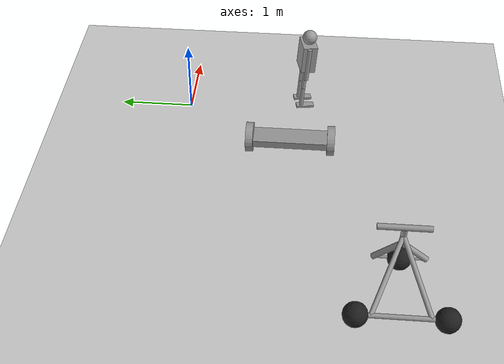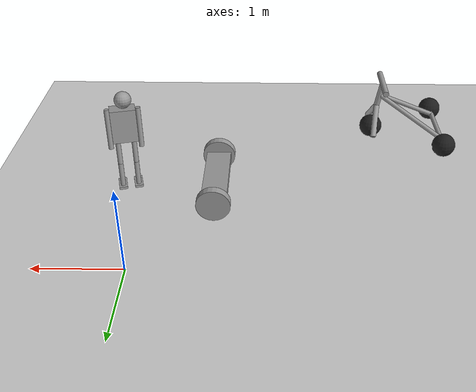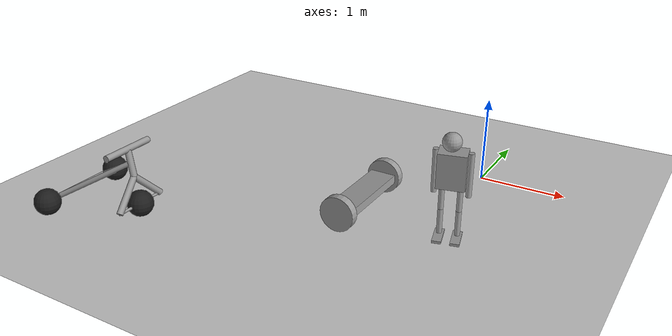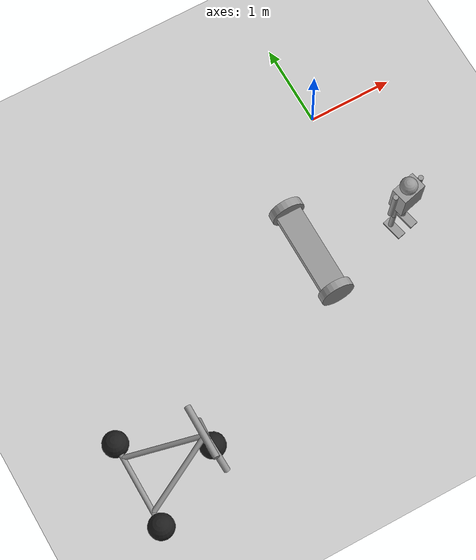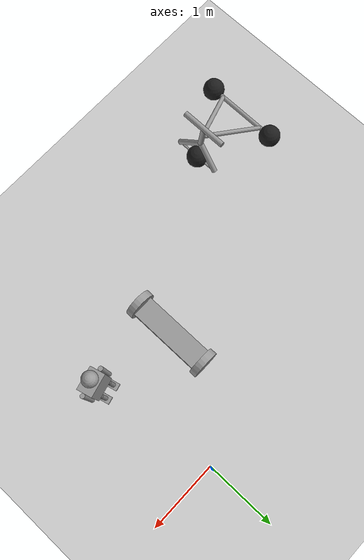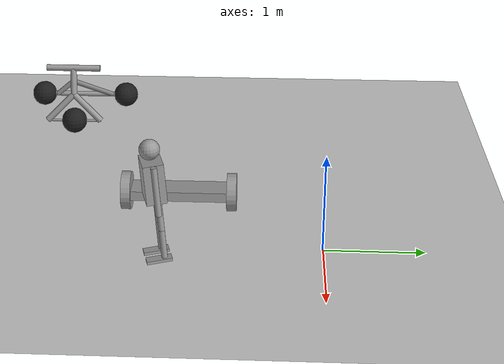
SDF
<sdf version="1.7">
 <world name="default">
  <model name="ground_plane">
   <static>1</static>
   <link name="link">
    <collision name="collision">
     <geometry><plane><normal>0 0 1</normal><size>100 100</size></plane></geometry>
     <surface>
      <contact><collide_bitmask>65535</collide_bitmask></contact>
      <friction><ode><mu>100</mu><mu2>50</mu2></ode></friction>
     </surface>
    </collision>
    <visual name="visual">
     <cast_shadows>0</cast_shadows>
     <geometry><plane><normal>0 0 1</normal><size>100 100</size></plane></geometry>
     <material>
      <script><uri>file://media/materials/scripts/gazebo.material</uri><name>Gazebo/Grey</name></script>
     </material>
    </visual>
   </link>
  </model>
  <model name="humanoid">
   <link name="link_0_clone">
    <inertial>
     <mass>1</mass>
     <inertia>
      <ixx>0.166667</ixx>
      <ixy>0</ixy>
      <ixz>0</ixz>
      <iyy>0.166667</iyy>
      <iyz>0</iyz>
      <izz>0.166667</izz>
     </inertia>
    </inertial>
    <pose>0.418913 -0.113822 0.015 0 -0 0</pose>
    <visual name="visual">
     <geometry><box><size>0.1 0.25 0.03</size></box></geometry>
     <material>
      <lighting>1</lighting>
      <script><uri>file://media/materials/scripts/gazebo.material</uri><name>Gazebo/Grey</name></script>
      <shader type="pixel"><normal_map>__default__</normal_map></shader>
      <ambient>0.3 0.3 0.3 1</ambient>
      <diffuse>0.7 0.7 0.7 1</diffuse>
      <specular>0.01 0.01 0.01 1</specular>
      <emissive>0 0 0 1</emissive>
     </material>
    </visual>
    <collision name="collision">
     <geometry><box><size>0.1 0.25 0.03</size></box></geometry>
     <surface>
      <friction>
       <ode><mu>1</mu><mu2>1</mu2><fdir1>0 0 0</fdir1><slip1>0</slip1><slip2>0</slip2></ode>
       <torsional>
        <coefficient>1</coefficient>
        <patch_radius>0</patch_radius>
        <surface_radius>0</surface_radius>
        <use_patch_radius>1</use_patch_radius>
        <ode><slip>0</slip></ode>
       </torsional>
      </friction>
      <bounce><restitution_coefficient>0</restitution_coefficient><threshold>1e+06</threshold></bounce>
      <contact>
       <collide_without_contact>0</collide_without_contact>
       <collide_without_contact_bitmask>1</collide_without_contact_bitmask>
       <collide_bitmask>1</collide_bitmask>
       <ode>
        <soft_cfm>0</soft_cfm>
        <soft_erp>0.2</soft_erp>
        <kp>1e+13</kp>
        <kd>1</kd>
        <max_vel>0.01</max_vel>
        <min_depth>0</min_depth>
       </ode>
       <bullet>
        <split_impulse>1</split_impulse>
        <split_impulse_penetration_threshold>-0.01</split_impulse_penetration_threshold>
        <soft_cfm>0</soft_cfm>
        <soft_erp>0.2</soft_erp>
        <kp>1e+13</kp>
        <kd>1</kd>
       </bullet>
      </contact>
     </surface>
    </collision>
   </link>
   <link name="link_0_clone_0">
    <inertial>
     <mass>1</mass>
     <inertia>
      <ixx>0.166667</ixx>
      <ixy>0</ixy>
      <ixz>0</ixz>
      <iyy>0.166667</iyy>
      <iyz>0</iyz>
      <izz>0.166667</izz>
     </inertia>
    </inertial>
    <pose>0.228912 -0.113822 0.015 0 -0 0</pose>
    <visual name="visual">
     <geometry><box><size>0.1 0.25 0.03</size></box></geometry>
     <material>
      <lighting>1</lighting>
      <script><uri>file://media/materials/scripts/gazebo.material</uri><name>Gazebo/Grey</name></script>
      <shader type="pixel"><normal_map>__default__</normal_map></shader>
      <ambient>0.3 0.3 0.3 1</ambient>
      <diffuse>0.7 0.7 0.7 1</diffuse>
      <specular>0.01 0.01 0.01 1</specular>
      <emissive>0 0 0 1</emissive>
     </material>
    </visual>
    <collision name="collision">
     <geometry><box><size>0.1 0.25 0.03</size></box></geometry>
     <surface>
      <friction>
       <ode><mu>1</mu><mu2>1</mu2><fdir1>0 0 0</fdir1><slip1>0</slip1><slip2>0</slip2></ode>
       <torsional>
        <coefficient>1</coefficient>
        <patch_radius>0</patch_radius>
        <surface_radius>0</surface_radius>
        <use_patch_radius>1</use_patch_radius>
        <ode><slip>0</slip></ode>
       </torsional>
      </friction>
      <bounce><restitution_coefficient>0</restitution_coefficient><threshold>1e+06</threshold></bounce>
      <contact>
       <collide_without_contact>0</collide_without_contact>
       <collide_without_contact_bitmask>1</collide_without_contact_bitmask>
       <collide_bitmask>1</collide_bitmask>
       <ode>
        <soft_cfm>0</soft_cfm>
        <soft_erp>0.2</soft_erp>
        <kp>1e+13</kp>
        <kd>1</kd>
        <max_vel>0.01</max_vel>
        <min_depth>0</min_depth>
       </ode>
       <bullet>
        <split_impulse>1</split_impulse>
        <split_impulse_penetration_threshold>-0.01</split_impulse_penetration_threshold>
        <soft_cfm>0</soft_cfm>
        <soft_erp>0.2</soft_erp>
        <kp>1e+13</kp>
        <kd>1</kd>
       </bullet>
      </contact>
     </surface>
    </collision>
   </link>
   <link name="link_1_clone">
    <inertial>
     <mass>1</mass>
     <inertia><ixx>0.145833</ixx><ixy>0</ixy><ixz>0</ixz><iyy>0.145833</iyy><iyz>0</iyz><izz>0.125</izz></inertia>
    </inertial>
    <pose>0.418913 -0.05882 0.175001 0 -0 0</pose>
    <visual name="visual">
     <geometry><cylinder><radius>0.03</radius><length>0.3</length></cylinder></geometry>
     <material>
      <lighting>1</lighting>
      <script><uri>file://media/materials/scripts/gazebo.material</uri><name>Gazebo/Grey</name></script>
      <shader type="pixel"><normal_map>__default__</normal_map></shader>
      <ambient>0.3 0.3 0.3 1</ambient>
      <diffuse>0.7 0.7 0.7 1</diffuse>
      <specular>0.01 0.01 0.01 1</specular>
      <emissive>0 0 0 1</emissive>
     </material>
    </visual>
    <collision name="collision">
     <geometry><cylinder><radius>0.03</radius><length>0.3</length></cylinder></geometry>
     <surface>
      <friction>
       <ode><mu>1</mu><mu2>1</mu2><fdir1>0 0 0</fdir1><slip1>0</slip1><slip2>0</slip2></ode>
       <torsional>
        <coefficient>1</coefficient>
        <patch_radius>0</patch_radius>
        <surface_radius>0</surface_radius>
        <use_patch_radius>1</use_patch_radius>
        <ode><slip>0</slip></ode>
       </torsional>
      </friction>
      <bounce><restitution_coefficient>0</restitution_coefficient><threshold>1e+06</threshold></bounce>
      <contact>
       <collide_without_contact>0</collide_without_contact>
       <collide_without_contact_bitmask>1</collide_without_contact_bitmask>
       <collide_bitmask>1</collide_bitmask>
       <ode>
        <soft_cfm>0</soft_cfm>
        <soft_erp>0.2</soft_erp>
        <kp>1e+13</kp>
        <kd>1</kd>
        <max_vel>0.01</max_vel>
        <min_depth>0</min_depth>
       </ode>
       <bullet>
        <split_impulse>1</split_impulse>
        <split_impulse_penetration_threshold>-0.01</split_impulse_penetration_threshold>
        <soft_cfm>0</soft_cfm>
        <soft_erp>0.2</soft_erp>
        <kp>1e+13</kp>
        <kd>1</kd>
       </bullet>
      </contact>
     </surface>
    </collision>
   </link>
   <link name="link_1_clone_clone">
    <inertial>
     <mass>1</mass>
     <inertia><ixx>0.145833</ixx><ixy>0</ixy><ixz>0</ixz><iyy>0.145833</iyy><iyz>0</iyz><izz>0.125</izz></inertia>
    </inertial>
    <pose>0.228912 -0.058822 0.175 0 -0 0</pose>
    <visual name="visual">
     <geometry><cylinder><radius>0.03</radius><length>0.3</length></cylinder></geometry>
     <material>
      <lighting>1</lighting>
      <script><uri>file://media/materials/scripts/gazebo.material</uri><name>Gazebo/Grey</name></script>
      <shader type="pixel"><normal_map>__default__</normal_map></shader>
      <ambient>0.3 0.3 0.3 1</ambient>
      <diffuse>0.7 0.7 0.7 1</diffuse>
      <specular>0.01 0.01 0.01 1</specular>
      <emissive>0 0 0 1</emissive>
     </material>
    </visual>
    <collision name="collision">
     <geometry><cylinder><radius>0.03</radius><length>0.3</length></cylinder></geometry>
     <surface>
      <friction>
       <ode><mu>1</mu><mu2>1</mu2><fdir1>0 0 0</fdir1><slip1>0</slip1><slip2>0</slip2></ode>
       <torsional>
        <coefficient>1</coefficient>
        <patch_radius>0</patch_radius>
        <surface_radius>0</surface_radius>
        <use_patch_radius>1</use_patch_radius>
        <ode><slip>0</slip></ode>
       </torsional>
      </friction>
      <bounce><restitution_coefficient>0</restitution_coefficient><threshold>1e+06</threshold></bounce>
      <contact>
       <collide_without_contact>0</collide_without_contact>
       <collide_without_contact_bitmask>1</collide_without_contact_bitmask>
       <collide_bitmask>1</collide_bitmask>
       <ode>
        <soft_cfm>0</soft_cfm>
        <soft_erp>0.2</soft_erp>
        <kp>1e+13</kp>
        <kd>1</kd>
        <max_vel>0.01</max_vel>
        <min_depth>0</min_depth>
       </ode>
       <bullet>
        <split_impulse>1</split_impulse>
        <split_impulse_penetration_threshold>-0.01</split_impulse_penetration_threshold>
        <soft_cfm>0</soft_cfm>
        <soft_erp>0.2</soft_erp>
        <kp>1e+13</kp>
        <kd>1</kd>
       </bullet>
      </contact>
     </surface>
    </collision>
   </link>
   <link name="link_1_clone_clone_0">
    <inertial>
     <mass>1</mass>
     <inertia><ixx>0.145833</ixx><ixy>0</ixy><ixz>0</ixz><iyy>0.145833</iyy><iyz>0</iyz><izz>0.125</izz></inertia>
    </inertial>
    <pose>0.418912 -0.05882 0.475001 0 -4e-06 1.3e-05</pose>
    <visual name="visual">
     <geometry><cylinder><radius>0.03</radius><length>0.3</length></cylinder></geometry>
     <material>
      <lighting>1</lighting>
      <script><uri>file://media/materials/scripts/gazebo.material</uri><name>Gazebo/Grey</name></script>
      <shader type="pixel"><normal_map>__default__</normal_map></shader>
      <ambient>0.3 0.3 0.3 1</ambient>
      <diffuse>0.7 0.7 0.7 1</diffuse>
      <specular>0.01 0.01 0.01 1</specular>
      <emissive>0 0 0 1</emissive>
     </material>
    </visual>
    <collision name="collision">
     <geometry><cylinder><radius>0.03</radius><length>0.3</length></cylinder></geometry>
     <surface>
      <friction>
       <ode><mu>1</mu><mu2>1</mu2><fdir1>0 0 0</fdir1><slip1>0</slip1><slip2>0</slip2></ode>
       <torsional>
        <coefficient>1</coefficient>
        <patch_radius>0</patch_radius>
        <surface_radius>0</surface_radius>
        <use_patch_radius>1</use_patch_radius>
        <ode><slip>0</slip></ode>
       </torsional>
      </friction>
      <bounce><restitution_coefficient>0</restitution_coefficient><threshold>1e+06</threshold></bounce>
      <contact>
       <collide_without_contact>0</collide_without_contact>
       <collide_without_contact_bitmask>1</collide_without_contact_bitmask>
       <collide_bitmask>1</collide_bitmask>
       <ode>
        <soft_cfm>0</soft_cfm>
        <soft_erp>0.2</soft_erp>
        <kp>1e+13</kp>
        <kd>1</kd>
        <max_vel>0.01</max_vel>
        <min_depth>0</min_depth>
       </ode>
       <bullet>
        <split_impulse>1</split_impulse>
        <split_impulse_penetration_threshold>-0.01</split_impulse_penetration_threshold>
        <soft_cfm>0</soft_cfm>
        <soft_erp>0.2</soft_erp>
        <kp>1e+13</kp>
        <kd>1</kd>
       </bullet>
      </contact>
     </surface>
    </collision>
   </link>
   <link name="link_1_clone_clone_1">
    <inertial>
     <mass>1</mass>
     <inertia><ixx>0.145833</ixx><ixy>0</ixy><ixz>0</ixz><iyy>0.145833</iyy><iyz>0</iyz><izz>0.125</izz></inertia>
    </inertial>
    <pose>0.228912 -0.058822 0.475 0 -4e-06 1.3e-05</pose>
    <visual name="visual">
     <geometry><cylinder><radius>0.03</radius><length>0.3</length></cylinder></geometry>
     <material>
      <lighting>1</lighting>
      <script><uri>file://media/materials/scripts/gazebo.material</uri><name>Gazebo/Grey</name></script>
      <shader type="pixel"><normal_map>__default__</normal_map></shader>
      <ambient>0.3 0.3 0.3 1</ambient>
      <diffuse>0.7 0.7 0.7 1</diffuse>
      <specular>0.01 0.01 0.01 1</specular>
      <emissive>0 0 0 1</emissive>
     </material>
    </visual>
    <collision name="collision">
     <geometry><cylinder><radius>0.03</radius><length>0.3</length></cylinder></geometry>
     <surface>
      <friction>
       <ode><mu>1</mu><mu2>1</mu2><fdir1>0 0 0</fdir1><slip1>0</slip1><slip2>0</slip2></ode>
       <torsional>
        <coefficient>1</coefficient>
        <patch_radius>0</patch_radius>
        <surface_radius>0</surface_radius>
        <use_patch_radius>1</use_patch_radius>
        <ode><slip>0</slip></ode>
       </torsional>
      </friction>
      <bounce><restitution_coefficient>0</restitution_coefficient><threshold>1e+06</threshold></bounce>
      <contact>
       <collide_without_contact>0</collide_without_contact>
       <collide_without_contact_bitmask>1</collide_without_contact_bitmask>
       <collide_bitmask>1</collide_bitmask>
       <ode>
        <soft_cfm>0</soft_cfm>
        <soft_erp>0.2</soft_erp>
        <kp>1e+13</kp>
        <kd>1</kd>
        <max_vel>0.01</max_vel>
        <min_depth>0</min_depth>
       </ode>
       <bullet>
        <split_impulse>1</split_impulse>
        <split_impulse_penetration_threshold>-0.01</split_impulse_penetration_threshold>
        <soft_cfm>0</soft_cfm>
        <soft_erp>0.2</soft_erp>
        <kp>1e+13</kp>
        <kd>1</kd>
       </bullet>
      </contact>
     </surface>
    </collision>
   </link>
   <link name="link_2">
    <inertial>
     <mass>1</mass>
     <inertia>
      <ixx>0.166667</ixx>
      <ixy>0</ixy>
      <ixz>0</ixz>
      <iyy>0.166667</iyy>
      <iyz>0</iyz>
      <izz>0.166667</izz>
     </inertia>
    </inertial>
    <pose>0.323911 -0.078821 0.825 0 -4e-06 1.3e-05</pose>
    <visual name="visual">
     <geometry><box><size>0.3 0.2 0.4</size></box></geometry>
     <material>
      <lighting>1</lighting>
      <script><uri>file://media/materials/scripts/gazebo.material</uri><name>Gazebo/Grey</name></script>
      <shader type="pixel"><normal_map>__default__</normal_map></shader>
      <ambient>0.3 0.3 0.3 1</ambient>
      <diffuse>0.7 0.7 0.7 1</diffuse>
      <specular>0.01 0.01 0.01 1</specular>
      <emissive>0 0 0 1</emissive>
     </material>
    </visual>
    <collision name="collision">
     <geometry><box><size>0.3 0.2 0.4</size></box></geometry>
     <surface>
      <friction>
       <ode><mu>1</mu><mu2>1</mu2><fdir1>0 0 0</fdir1><slip1>0</slip1><slip2>0</slip2></ode>
       <torsional>
        <coefficient>1</coefficient>
        <patch_radius>0</patch_radius>
        <surface_radius>0</surface_radius>
        <use_patch_radius>1</use_patch_radius>
        <ode><slip>0</slip></ode>
       </torsional>
      </friction>
      <bounce><restitution_coefficient>0</restitution_coefficient><threshold>1e+06</threshold></bounce>
      <contact>
       <collide_without_contact>0</collide_without_contact>
       <collide_without_contact_bitmask>1</collide_without_contact_bitmask>
       <collide_bitmask>1</collide_bitmask>
       <ode>
        <soft_cfm>0</soft_cfm>
        <soft_erp>0.2</soft_erp>
        <kp>1e+13</kp>
        <kd>1</kd>
        <max_vel>0.01</max_vel>
        <min_depth>0</min_depth>
       </ode>
       <bullet>
        <split_impulse>1</split_impulse>
        <split_impulse_penetration_threshold>-0.01</split_impulse_penetration_threshold>
        <soft_cfm>0</soft_cfm>
        <soft_erp>0.2</soft_erp>
        <kp>1e+13</kp>
        <kd>1</kd>
       </bullet>
      </contact>
     </surface>
    </collision>
   </link>
   <link name="link_3">
    <inertial>
     <mass>1</mass>
     <inertia><ixx>0.145833</ixx><ixy>0</ixy><ixz>0</ixz><iyy>0.145833</iyy><iyz>0</iyz><izz>0.125</izz></inertia>
    </inertial>
    <pose>0.503911 -0.078818 0.775001 0 -4e-06 1.3e-05</pose>
    <visual name="visual">
     <geometry><cylinder><radius>0.03</radius><length>0.5</length></cylinder></geometry>
     <material>
      <lighting>1</lighting>
      <script><uri>file://media/materials/scripts/gazebo.material</uri><name>Gazebo/Grey</name></script>
      <shader type="pixel"><normal_map>__default__</normal_map></shader>
      <ambient>0.3 0.3 0.3 1</ambient>
      <diffuse>0.7 0.7 0.7 1</diffuse>
      <specular>0.01 0.01 0.01 1</specular>
      <emissive>0 0 0 1</emissive>
     </material>
    </visual>
    <collision name="collision">
     <geometry><cylinder><radius>0.03</radius><length>0.5</length></cylinder></geometry>
     <surface>
      <friction>
       <ode><mu>1</mu><mu2>1</mu2><fdir1>0 0 0</fdir1><slip1>0</slip1><slip2>0</slip2></ode>
       <torsional>
        <coefficient>1</coefficient>
        <patch_radius>0</patch_radius>
        <surface_radius>0</surface_radius>
        <use_patch_radius>1</use_patch_radius>
        <ode><slip>0</slip></ode>
       </torsional>
      </friction>
      <bounce><restitution_coefficient>0</restitution_coefficient><threshold>1e+06</threshold></bounce>
      <contact>
       <collide_without_contact>0</collide_without_contact>
       <collide_without_contact_bitmask>1</collide_without_contact_bitmask>
       <collide_bitmask>1</collide_bitmask>
       <ode>
        <soft_cfm>0</soft_cfm>
        <soft_erp>0.2</soft_erp>
        <kp>1e+13</kp>
        <kd>1</kd>
        <max_vel>0.01</max_vel>
        <min_depth>0</min_depth>
       </ode>
       <bullet>
        <split_impulse>1</split_impulse>
        <split_impulse_penetration_threshold>-0.01</split_impulse_penetration_threshold>
        <soft_cfm>0</soft_cfm>
        <soft_erp>0.2</soft_erp>
        <kp>1e+13</kp>
        <kd>1</kd>
       </bullet>
      </contact>
     </surface>
    </collision>
   </link>
   <link name="link_3_clone">
    <inertial>
     <mass>1</mass>
     <inertia><ixx>0.145833</ixx><ixy>0</ixy><ixz>0</ixz><iyy>0.145833</iyy><iyz>0</iyz><izz>0.125</izz></inertia>
    </inertial>
    <pose>0.143909 -0.058823 0.775002 0 -8e-06 2.6e-05</pose>
    <visual name="visual">
     <geometry><cylinder><radius>0.03</radius><length>0.5</length></cylinder></geometry>
     <material>
      <lighting>1</lighting>
      <script><uri>file://media/materials/scripts/gazebo.material</uri><name>Gazebo/Grey</name></script>
      <shader type="pixel"><normal_map>__default__</normal_map></shader>
      <ambient>0.3 0.3 0.3 1</ambient>
      <diffuse>0.7 0.7 0.7 1</diffuse>
      <specular>0.01 0.01 0.01 1</specular>
      <emissive>0 0 0 1</emissive>
     </material>
    </visual>
    <collision name="collision">
     <geometry><cylinder><radius>0.03</radius><length>0.5</length></cylinder></geometry>
     <surface>
      <friction>
       <ode><mu>1</mu><mu2>1</mu2><fdir1>0 0 0</fdir1><slip1>0</slip1><slip2>0</slip2></ode>
       <torsional>
        <coefficient>1</coefficient>
        <patch_radius>0</patch_radius>
        <surface_radius>0</surface_radius>
        <use_patch_radius>1</use_patch_radius>
        <ode><slip>0</slip></ode>
       </torsional>
      </friction>
      <bounce><restitution_coefficient>0</restitution_coefficient><threshold>1e+06</threshold></bounce>
      <contact>
       <collide_without_contact>0</collide_without_contact>
       <collide_without_contact_bitmask>1</collide_without_contact_bitmask>
       <collide_bitmask>1</collide_bitmask>
       <ode>
        <soft_cfm>0</soft_cfm>
        <soft_erp>0.2</soft_erp>
        <kp>1e+13</kp>
        <kd>1</kd>
        <max_vel>0.01</max_vel>
        <min_depth>0</min_depth>
       </ode>
       <bullet>
        <split_impulse>1</split_impulse>
        <split_impulse_penetration_threshold>-0.01</split_impulse_penetration_threshold>
        <soft_cfm>0</soft_cfm>
        <soft_erp>0.2</soft_erp>
        <kp>1e+13</kp>
        <kd>1</kd>
       </bullet>
      </contact>
     </surface>
    </collision>
   </link>
   <link name="link_4">
    <inertial>
     <mass>1</mass>
     <inertia><ixx>0.1</ixx><ixy>0</ixy><ixz>0</ixz><iyy>0.1</iyy><iyz>0</iyz><izz>0.1</izz></inertia>
    </inertial>
    <pose>0.30391 -0.078821 1.125 0 -4e-06 1.3e-05</pose>
    <visual name="visual">
     <geometry><sphere><radius>0.1</radius></sphere></geometry>
     <material>
      <lighting>1</lighting>
      <script><uri>file://media/materials/scripts/gazebo.material</uri><name>Gazebo/Grey</name></script>
      <shader type="pixel"><normal_map>__default__</normal_map></shader>
      <ambient>0.3 0.3 0.3 1</ambient>
      <diffuse>0.7 0.7 0.7 1</diffuse>
      <specular>0.01 0.01 0.01 1</specular>
      <emissive>0 0 0 1</emissive>
     </material>
    </visual>
    <collision name="collision">
     <geometry><sphere><radius>0.1</radius></sphere></geometry>
     <surface>
      <friction>
       <ode><mu>1</mu><mu2>1</mu2><fdir1>0 0 0</fdir1><slip1>0</slip1><slip2>0</slip2></ode>
       <torsional>
        <coefficient>1</coefficient>
        <patch_radius>0</patch_radius>
        <surface_radius>0</surface_radius>
        <use_patch_radius>1</use_patch_radius>
        <ode><slip>0</slip></ode>
       </torsional>
      </friction>
      <bounce><restitution_coefficient>0</restitution_coefficient><threshold>1e+06</threshold></bounce>
      <contact>
       <collide_without_contact>0</collide_without_contact>
       <collide_without_contact_bitmask>1</collide_without_contact_bitmask>
       <collide_bitmask>1</collide_bitmask>
       <ode>
        <soft_cfm>0</soft_cfm>
        <soft_erp>0.2</soft_erp>
        <kp>1e+13</kp>
        <kd>1</kd>
        <max_vel>0.01</max_vel>
        <min_depth>0</min_depth>
       </ode>
       <bullet>
        <split_impulse>1</split_impulse>
        <split_impulse_penetration_threshold>-0.01</split_impulse_penetration_threshold>
        <soft_cfm>0</soft_cfm>
        <soft_erp>0.2</soft_erp>
        <kp>1e+13</kp>
        <kd>1</kd>
       </bullet>
      </contact>
     </surface>
    </collision>
   </link>
   <joint name="link_0_clone_0_JOINT_3" type="universal">
    <parent>link_0_clone_0</parent>
    <child>link_1_clone_clone</child>
    <axis>
     <xyz>1 0 0</xyz>
     <limit>
      <lower>-1.79769e+308</lower>
      <upper>1.79769e+308</upper>
      <effort>-1</effort>
      <velocity>-1</velocity>
     </limit>
     <dynamics>
      <spring_reference>0</spring_reference>
      <spring_stiffness>0</spring_stiffness>
      <damping>0</damping>
      <friction>0</friction>
     </dynamics>
    </axis>
    <axis2>
     <xyz>0 1 0</xyz>
     <limit>
      <lower>-1.79769e+308</lower>
      <upper>1.79769e+308</upper>
      <effort>-1</effort>
      <velocity>-1</velocity>
     </limit>
     <dynamics>
      <spring_reference>0</spring_reference>
      <spring_stiffness>0</spring_stiffness>
      <damping>0</damping>
      <friction>0</friction>
     </dynamics>
    </axis2>
    <physics>
     <ode><limit><cfm>0</cfm><erp>0.2</erp></limit><suspension><cfm>0</cfm><erp>0.2</erp></suspension></ode>
    </physics>
   </joint>
   <joint name="link_0_clone_JOINT_14" type="universal">
    <parent>link_1_clone</parent>
    <child>link_0_clone</child>
    <axis>
     <xyz>1 0 0</xyz>
     <limit>
      <lower>-1.79769e+308</lower>
      <upper>1.79769e+308</upper>
      <effort>-1</effort>
      <velocity>-1</velocity>
     </limit>
     <dynamics>
      <spring_reference>0</spring_reference>
      <spring_stiffness>0</spring_stiffness>
      <damping>0</damping>
     </dynamics>
    </axis>
    <axis2>
     <xyz>0 1 0</xyz>
     <limit>
      <lower>-1.79769e+308</lower>
      <upper>1.79769e+308</upper>
      <effort>-1</effort>
      <velocity>-1</velocity>
     </limit>
     <dynamics>
      <spring_reference>0</spring_reference>
      <spring_stiffness>0</spring_stiffness>
      <damping>0</damping>
     </dynamics>
    </axis2>
    <physics>
     <ode><limit><cfm>0</cfm><erp>0.2</erp></limit><suspension><cfm>0</cfm><erp>0.2</erp></suspension></ode>
    </physics>
   </joint>
   <joint name="link_1_clone_clone_0_JOINT_12" type="ball">
    <parent>link_1_clone_clone_0</parent>
    <child>link_1_clone</child>
    <physics>
     <ode><limit><cfm>0</cfm><erp>0.2</erp></limit><suspension><cfm>0</cfm><erp>0.2</erp></suspension></ode>
    </physics>
   </joint>
   <joint name="link_1_clone_clone_1_JOINT_9" type="universal">
    <parent>link_1_clone_clone_1</parent>
    <child>link_2</child>
    <axis>
     <xyz>1 0 0</xyz>
     <limit>
      <lower>-1.79769e+308</lower>
      <upper>1.79769e+308</upper>
      <effort>-1</effort>
      <velocity>-1</velocity>
     </limit>
     <dynamics>
      <spring_reference>0</spring_reference>
      <spring_stiffness>0</spring_stiffness>
      <damping>0</damping>
     </dynamics>
    </axis>
    <axis2>
     <xyz>0 1 0</xyz>
     <limit>
      <lower>-1.79769e+308</lower>
      <upper>1.79769e+308</upper>
      <effort>-1</effort>
      <velocity>-1</velocity>
     </limit>
     <dynamics>
      <spring_reference>0</spring_reference>
      <spring_stiffness>0</spring_stiffness>
      <damping>0</damping>
     </dynamics>
    </axis2>
    <physics>
     <ode><limit><cfm>0</cfm><erp>0.2</erp></limit><suspension><cfm>0</cfm><erp>0.2</erp></suspension></ode>
    </physics>
   </joint>
   <joint name="link_1_clone_clone_JOINT_7" type="revolute">
    <parent>link_1_clone_clone</parent>
    <child>link_1_clone_clone_1</child>
    <axis>
     <xyz>1 0 0</xyz>
     <limit>
      <lower>-1.79769e+308</lower>
      <upper>1.79769e+308</upper>
      <effort>-1</effort>
      <velocity>-1</velocity>
     </limit>
     <dynamics>
      <spring_reference>0</spring_reference>
      <spring_stiffness>0</spring_stiffness>
      <damping>0</damping>
     </dynamics>
    </axis>
    <physics>
     <ode><limit><cfm>0</cfm><erp>0.2</erp></limit><suspension><cfm>0</cfm><erp>0.2</erp></suspension></ode>
    </physics>
   </joint>
   <joint name="link_2_JOINT_11" type="universal">
    <parent>link_2</parent>
    <child>link_1_clone_clone_0</child>
    <axis>
     <xyz>1 0 0</xyz>
     <limit>
      <lower>-1.79769e+308</lower>
      <upper>1.79769e+308</upper>
      <effort>-1</effort>
      <velocity>-1</velocity>
     </limit>
     <dynamics>
      <spring_reference>0</spring_reference>
      <spring_stiffness>0</spring_stiffness>
      <damping>0</damping>
     </dynamics>
    </axis>
    <axis2>
     <xyz>0 1 0</xyz>
     <limit>
      <lower>-1.79769e+308</lower>
      <upper>1.79769e+308</upper>
      <effort>-1</effort>
      <velocity>-1</velocity>
     </limit>
     <dynamics>
      <spring_reference>0</spring_reference>
      <spring_stiffness>0</spring_stiffness>
      <damping>0</damping>
     </dynamics>
    </axis2>
    <physics>
     <ode><limit><cfm>0</cfm><erp>0.2</erp></limit><suspension><cfm>0</cfm><erp>0.2</erp></suspension></ode>
    </physics>
   </joint>
   <joint name="link_2_JOINT_15" type="revolute">
    <parent>link_2</parent>
    <child>link_3</child>
    <pose>0 0 0.2 0 -0 0</pose>
    <axis>
     <xyz>1 0 0</xyz>
     <limit>
      <lower>-1.79769e+308</lower>
      <upper>1.79769e+308</upper>
      <effort>-1</effort>
      <velocity>-1</velocity>
     </limit>
     <dynamics>
      <spring_reference>0</spring_reference>
      <spring_stiffness>0</spring_stiffness>
      <damping>0</damping>
     </dynamics>
    </axis>
    <physics>
     <ode><limit><cfm>0</cfm><erp>0.2</erp></limit><suspension><cfm>0</cfm><erp>0.2</erp></suspension></ode>
    </physics>
   </joint>
   <joint name="link_2_JOINT_17" type="revolute">
    <parent>link_2</parent>
    <child>link_4</child>
    <axis>
     <xyz>1 0 0</xyz>
     <limit>
      <lower>-1.79769e+308</lower>
      <upper>1.79769e+308</upper>
      <effort>-1</effort>
      <velocity>-1</velocity>
     </limit>
     <dynamics>
      <spring_reference>0</spring_reference>
      <spring_stiffness>0</spring_stiffness>
      <damping>0</damping>
     </dynamics>
    </axis>
    <physics>
     <ode><limit><cfm>0</cfm><erp>0.2</erp></limit><suspension><cfm>0</cfm><erp>0.2</erp></suspension></ode>
    </physics>
   </joint>
   <joint name="link_3_clone_JOINT_16" type="revolute">
    <parent>link_2</parent>
    <child>link_3_clone</child>
    <pose>0 0 0.2 0 -0 0</pose>
    <axis>
     <xyz>1 0 0</xyz>
     <limit>
      <lower>-1.79769e+308</lower>
      <upper>1.79769e+308</upper>
      <effort>-1</effort>
      <velocity>-1</velocity>
     </limit>
     <dynamics>
      <spring_reference>0</spring_reference>
      <spring_stiffness>0</spring_stiffness>
      <damping>0</damping>
     </dynamics>
    </axis>
    <physics>
     <ode><limit><cfm>0</cfm><erp>0.2</erp></limit><suspension><cfm>0</cfm><erp>0.2</erp></suspension></ode>
    </physics>
   </joint>
   <static>0</static>
   <pose>-0.129139 -1.57628 0.019565 0.082017 -0 0.246126</pose>
  </model>
  <model name="2wheel_clone">
   <link name="link_0_clone">
    <inertial>
     <mass>1</mass>
     <inertia>
      <ixx>0.166667</ixx>
      <ixy>0</ixy>
      <ixz>0</ixz>
      <iyy>0.166667</iyy>
      <iyz>0</iyz>
      <izz>0.166667</izz>
     </inertia>
    </inertial>
    <visual name="visual">
     <geometry><box><size>0.3 1 0.1</size></box></geometry>
     <material>
      <lighting>1</lighting>
      <script><uri>file://media/materials/scripts/gazebo.material</uri><name>Gazebo/Grey</name></script>
      <shader type="pixel"><normal_map>__default__</normal_map></shader>
      <ambient>0.3 0.3 0.3 1</ambient>
      <diffuse>0.7 0.7 0.7 1</diffuse>
      <specular>0.01 0.01 0.01 1</specular>
      <emissive>0 0 0 1</emissive>
     </material>
    </visual>
    <collision name="collision">
     <geometry><box><size>0.3 1 0.1</size></box></geometry>
     <surface>
      <friction>
       <ode><mu>1</mu><mu2>1</mu2><fdir1>0 0 0</fdir1><slip1>0</slip1><slip2>0</slip2></ode>
       <torsional>
        <coefficient>1</coefficient>
        <patch_radius>0</patch_radius>
        <surface_radius>0</surface_radius>
        <use_patch_radius>1</use_patch_radius>
        <ode><slip>0</slip></ode>
       </torsional>
      </friction>
      <bounce><restitution_coefficient>0</restitution_coefficient><threshold>1e+06</threshold></bounce>
      <contact>
       <collide_without_contact>0</collide_without_contact>
       <collide_without_contact_bitmask>1</collide_without_contact_bitmask>
       <collide_bitmask>1</collide_bitmask>
       <ode>
        <soft_cfm>0</soft_cfm>
        <soft_erp>0.2</soft_erp>
        <kp>1e+13</kp>
        <kd>1</kd>
        <max_vel>0.01</max_vel>
        <min_depth>0</min_depth>
       </ode>
       <bullet>
        <split_impulse>1</split_impulse>
        <split_impulse_penetration_threshold>-0.01</split_impulse_penetration_threshold>
        <soft_cfm>0</soft_cfm>
        <soft_erp>0.2</soft_erp>
        <kp>1e+13</kp>
        <kd>1</kd>
       </bullet>
      </contact>
     </surface>
    </collision>
   </link>
   <link name="link_1">
    <inertial>
     <mass>1</mass>
     <inertia><ixx>0.145833</ixx><ixy>0</ixy><ixz>0</ixz><iyy>0.145833</iyy><iyz>0</iyz><izz>0.125</izz></inertia>
    </inertial>
    <pose>0 -0.550019 0 1.5707 -0 0</pose>
    <visual name="visual">
     <geometry><cylinder><radius>0.2</radius><length>0.1</length></cylinder></geometry>
     <material>
      <lighting>1</lighting>
      <script><uri>file://media/materials/scripts/gazebo.material</uri><name>Gazebo/Grey</name></script>
      <shader type="pixel"><normal_map>__default__</normal_map></shader>
      <ambient>0.3 0.3 0.3 1</ambient>
      <diffuse>0.7 0.7 0.7 1</diffuse>
      <specular>0.01 0.01 0.01 1</specular>
      <emissive>0 0 0 1</emissive>
     </material>
    </visual>
    <collision name="collision">
     <geometry><cylinder><radius>0.2</radius><length>0.1</length></cylinder></geometry>
     <surface>
      <friction>
       <ode><mu>1</mu><mu2>1</mu2><fdir1>0 0 0</fdir1><slip1>0</slip1><slip2>0</slip2></ode>
       <torsional>
        <coefficient>1</coefficient>
        <patch_radius>0</patch_radius>
        <surface_radius>0</surface_radius>
        <use_patch_radius>1</use_patch_radius>
        <ode><slip>0</slip></ode>
       </torsional>
      </friction>
      <bounce><restitution_coefficient>0</restitution_coefficient><threshold>1e+06</threshold></bounce>
      <contact>
       <collide_without_contact>0</collide_without_contact>
       <collide_without_contact_bitmask>1</collide_without_contact_bitmask>
       <collide_bitmask>1</collide_bitmask>
       <ode>
        <soft_cfm>0</soft_cfm>
        <soft_erp>0.2</soft_erp>
        <kp>1e+13</kp>
        <kd>1</kd>
        <max_vel>0.01</max_vel>
        <min_depth>0</min_depth>
       </ode>
       <bullet>
        <split_impulse>1</split_impulse>
        <split_impulse_penetration_threshold>-0.01</split_impulse_penetration_threshold>
        <soft_cfm>0</soft_cfm>
        <soft_erp>0.2</soft_erp>
        <kp>1e+13</kp>
        <kd>1</kd>
       </bullet>
      </contact>
     </surface>
    </collision>
   </link>
   <link name="link_1_clone">
    <inertial>
     <mass>1</mass>
     <inertia><ixx>0.145833</ixx><ixy>0</ixy><ixz>0</ixz><iyy>0.145833</iyy><iyz>0</iyz><izz>0.125</izz></inertia>
    </inertial>
    <pose>0 0.550019 0 1.5707 -0 0</pose>
    <visual name="visual">
     <geometry><cylinder><radius>0.2</radius><length>0.1</length></cylinder></geometry>
     <material>
      <lighting>1</lighting>
      <script><uri>file://media/materials/scripts/gazebo.material</uri><name>Gazebo/Grey</name></script>
      <shader type="pixel"><normal_map>__default__</normal_map></shader>
      <ambient>0.3 0.3 0.3 1</ambient>
      <diffuse>0.7 0.7 0.7 1</diffuse>
      <specular>0.01 0.01 0.01 1</specular>
      <emissive>0 0 0 1</emissive>
     </material>
    </visual>
    <collision name="collision">
     <geometry><cylinder><radius>0.2</radius><length>0.1</length></cylinder></geometry>
     <surface>
      <friction>
       <ode><mu>1</mu><mu2>1</mu2><fdir1>0 0 0</fdir1><slip1>0</slip1><slip2>0</slip2></ode>
       <torsional>
        <coefficient>1</coefficient>
        <patch_radius>0</patch_radius>
        <surface_radius>0</surface_radius>
        <use_patch_radius>1</use_patch_radius>
        <ode><slip>0</slip></ode>
       </torsional>
      </friction>
      <bounce><restitution_coefficient>0</restitution_coefficient><threshold>1e+06</threshold></bounce>
      <contact>
       <collide_without_contact>0</collide_without_contact>
       <collide_without_contact_bitmask>1</collide_without_contact_bitmask>
       <collide_bitmask>1</collide_bitmask>
       <ode>
        <soft_cfm>0</soft_cfm>
        <soft_erp>0.2</soft_erp>
        <kp>1e+13</kp>
        <kd>1</kd>
        <max_vel>0.01</max_vel>
        <min_depth>0</min_depth>
       </ode>
       <bullet>
        <split_impulse>1</split_impulse>
        <split_impulse_penetration_threshold>-0.01</split_impulse_penetration_threshold>
        <soft_cfm>0</soft_cfm>
        <soft_erp>0.2</soft_erp>
        <kp>1e+13</kp>
        <kd>1</kd>
       </bullet>
      </contact>
     </surface>
    </collision>
   </link>
   <joint name="link_0_clone_JOINT_0" type="revolute">
    <parent>link_0_clone</parent>
    <child>link_1</child>
    <axis>
     <xyz>0 0 1</xyz>
     <limit>
      <lower>-1.79769e+308</lower>
      <upper>1.79769e+308</upper>
      <effort>-1</effort>
      <velocity>-1</velocity>
     </limit>
     <dynamics>
      <spring_reference>0</spring_reference>
      <spring_stiffness>0</spring_stiffness>
      <damping>0</damping>
     </dynamics>
    </axis>
    <physics>
     <ode><limit><cfm>0</cfm><erp>0.2</erp></limit><suspension><cfm>0</cfm><erp>0.2</erp></suspension></ode>
    </physics>
   </joint>
   <joint name="link_0_clone_JOINT_1" type="revolute">
    <parent>link_0_clone</parent>
    <child>link_1_clone</child>
    <axis>
     <xyz>0 0 1</xyz>
     <limit>
      <lower>-1.79769e+308</lower>
      <upper>1.79769e+308</upper>
      <effort>-1</effort>
      <velocity>-1</velocity>
     </limit>
     <dynamics>
      <spring_reference>0</spring_reference>
      <spring_stiffness>0</spring_stiffness>
      <damping>0</damping>
     </dynamics>
    </axis>
    <physics>
     <ode><limit><cfm>0</cfm><erp>0.2</erp></limit><suspension><cfm>0</cfm><erp>0.2</erp></suspension></ode>
    </physics>
   </joint>
   <static>0</static>
   <pose>-0.864106 -1.47809 0.200005 0 -0 0</pose>
  </model>
  <model name="trisphere_cycle">
   <link name="frame">
    <pose>-0.408559 0 0.385023 0 -0.522021 0</pose>
    <inertial>
     <mass>10</mass>
     <inertia><ixx>0.228</ixx><iyy>0.743521</iyy><izz>0.965521</izz><ixy>0</ixy><ixz>0</ixz><iyz>0</iyz></inertia>
    </inertial>
    <collision name="axle_collision">
     <pose>-0.471335 0 0 1.5708 -0 0</pose>
     <geometry><cylinder><length>1.03923</length><radius>0.03</radius></cylinder></geometry>
    </collision>
    <visual name="axle_visual">
     <pose>-0.471335 0 0 1.5708 -0 0</pose>
     <geometry><cylinder><length>1.03923</length><radius>0.03</radius></cylinder></geometry>
     <material>
      <script><uri>file://media/materials/scripts/gazebo.material</uri><name>Gazebo/Grey</name></script>
     </material>
    </visual>
    <collision name="frame_left_collision">
     <pose>0 0.171552 0 -2.79253 1.57079 3.14159</pose>
     <geometry><cylinder><length>1.00317</length><radius>0.03</radius></cylinder></geometry>
    </collision>
    <visual name="frame_left_visual">
     <pose>0 0.171552 0 -2.79253 1.57079 3.14159</pose>
     <geometry><cylinder><length>1.00317</length><radius>0.03</radius></cylinder></geometry>
     <material>
      <script><uri>file://media/materials/scripts/gazebo.material</uri><name>Gazebo/Grey</name></script>
     </material>
    </visual>
    <collision name="frame_right_collision">
     <pose>0 -0.171552 0 2.79253 1.57079 -3.14159</pose>
     <geometry><cylinder><length>1.00317</length><radius>0.03</radius></cylinder></geometry>
    </collision>
    <visual name="frame_right_visual">
     <pose>0 -0.171552 0 2.79253 1.57079 -3.14159</pose>
     <geometry><cylinder><length>1.00317</length><radius>0.03</radius></cylinder></geometry>
     <material>
      <script><uri>file://media/materials/scripts/gazebo.material</uri><name>Gazebo/Grey</name></script>
     </material>
    </visual>
   </link>
   <link name="fork">
    <pose>0.041441 0 0.385023 0 -0.174533 0</pose>
    <inertial>
     <mass>3</mass>
     <inertia>
      <ixx>0.158203</ixx>
      <iyy>0.0583594</iyy>
      <izz>0.102656</izz>
      <ixy>0</ixy>
      <ixz>0</ixz>
      <iyz>0</iyz>
     </inertia>
    </inertial>
    <collision name="handlebars_collision">
     <pose>0 0 0.397748 1.5708 -0 0</pose>
     <geometry><cylinder><length>0.636396</length><radius>0.0375</radius></cylinder></geometry>
    </collision>
    <visual name="handlebars_visual">
     <pose>0 0 0.397748 1.5708 -0 0</pose>
     <geometry><cylinder><length>0.636396</length><radius>0.0375</radius></cylinder></geometry>
     <material>
      <script><uri>file://media/materials/scripts/gazebo.material</uri><name>Gazebo/Grey</name></script>
     </material>
    </visual>
    <collision name="headtube_collision">
     <pose>0 0 0.238649 0 -0 0</pose>
     <geometry><cylinder><length>0.318198</length><radius>0.0375</radius></cylinder></geometry>
    </collision>
    <visual name="headtube_visual">
     <pose>0 0 0.238649 0 -0 0</pose>
     <geometry><cylinder><length>0.318198</length><radius>0.0375</radius></cylinder></geometry>
     <material>
      <script><uri>file://media/materials/scripts/gazebo.material</uri><name>Gazebo/Grey</name></script>
     </material>
    </visual>
    <collision name="spindle_collision">
     <pose>0 0 -0.238649 1.5708 -0 0</pose>
     <geometry><cylinder><length>0.636396</length><radius>0.015</radius></cylinder></geometry>
    </collision>
    <visual name="spindle_visual">
     <pose>0 0 -0.238649 1.5708 -0 0</pose>
     <geometry><cylinder><length>0.636396</length><radius>0.015</radius></cylinder></geometry>
     <material>
      <script><uri>file://media/materials/scripts/gazebo.material</uri><name>Gazebo/Grey</name></script>
     </material>
    </visual>
    <collision name="fork_left_collision">
     <pose>0 0.159099 -0.07955 0.785398 -0 0</pose>
     <geometry><cylinder><length>0.45</length><radius>0.0375</radius></cylinder></geometry>
    </collision>
    <visual name="fork_left_visual">
     <pose>0 0.159099 -0.07955 0.785398 -0 0</pose>
     <geometry><cylinder><length>0.45</length><radius>0.0375</radius></cylinder></geometry>
     <material>
      <script><uri>file://media/materials/scripts/gazebo.material</uri><name>Gazebo/Grey</name></script>
     </material>
    </visual>
    <collision name="fork_right_collision">
     <pose>0 -0.159099 -0.07955 -0.785398 0 0</pose>
     <geometry><cylinder><length>0.45</length><radius>0.0375</radius></cylinder></geometry>
    </collision>
    <visual name="fork_right_visual">
     <pose>0 -0.159099 -0.07955 -0.785398 0 0</pose>
     <geometry><cylinder><length>0.45</length><radius>0.0375</radius></cylinder></geometry>
     <material>
      <script><uri>file://media/materials/scripts/gazebo.material</uri><name>Gazebo/Grey</name></script>
     </material>
    </visual>
   </link>
   <link name="wheel_front">
    <pose>0.082882 0 0.15 0 -0 0</pose>
    <inertial>
     <mass>0.5</mass>
     <inertia><ixx>0.0045</ixx><iyy>0.0045</iyy><izz>0.0045</izz><ixy>0</ixy><ixz>0</ixz><iyz>0</iyz></inertia>
    </inertial>
    <collision name="collision">
     <geometry><sphere><radius>0.15</radius></sphere></geometry>
     <surface><contact><ode><kp>1e+08</kp><kd>1</kd><min_depth>0.0005</min_depth></ode></contact></surface>
    </collision>
    <visual name="visual">
     <geometry><sphere><radius>0.15</radius></sphere></geometry>
     <material>
      <script><uri>file://media/materials/scripts/gazebo.material</uri><name>Gazebo/Black</name></script>
     </material>
    </visual>
   </link>
   <joint name="wheel_front_steer" type="revolute">
    <parent>frame</parent>
    <child>fork</child>
    <axis>
     <xyz>0 0 1</xyz>
     <limit><lower>-0.959931</lower><upper>0.959931</upper></limit>
     <dynamics><spring_reference>0</spring_reference><spring_stiffness>0</spring_stiffness></dynamics>
    </axis>
   </joint>
   <joint name="wheel_front_spin" type="revolute">
    <parent>fork</parent>
    <child>wheel_front</child>
    <axis>
     <xyz>0 1 0</xyz>
     <limit><lower>-1e+16</lower><upper>1e+16</upper></limit>
     <dynamics><spring_reference>0</spring_reference><spring_stiffness>0</spring_stiffness></dynamics>
    </axis>
   </joint>
   <link name="wheel_rear_left">
    <pose>-0.817118 0.519615 0.15 0 -0 0</pose>
    <inertial>
     <mass>0.5</mass>
     <inertia><ixx>0.0045</ixx><iyy>0.0045</iyy><izz>0.0045</izz><ixy>0</ixy><ixz>0</ixz><iyz>0</iyz></inertia>
    </inertial>
    <collision name="collision">
     <geometry><sphere><radius>0.15</radius></sphere></geometry>
     <surface><contact><ode><kp>1e+08</kp><kd>1</kd><min_depth>0.0005</min_depth></ode></contact></surface>
    </collision>
    <visual name="visual">
     <geometry><sphere><radius>0.15</radius></sphere></geometry>
     <material>
      <script><uri>file://media/materials/scripts/gazebo.material</uri><name>Gazebo/Black</name></script>
     </material>
    </visual>
   </link>
   <joint name="wheel_rear_left_spin" type="revolute">
    <parent>frame</parent>
    <child>wheel_rear_left</child>
    <axis>
     <xyz>0 1 0</xyz>
     <limit><lower>-1e+16</lower><upper>1e+16</upper></limit>
     <dynamics><spring_reference>0</spring_reference><spring_stiffness>0</spring_stiffness></dynamics>
    </axis>
   </joint>
   <link name="wheel_rear_right">
    <pose>-0.817118 -0.519615 0.15 0 -0 0</pose>
    <inertial>
     <mass>0.5</mass>
     <inertia><ixx>0.0045</ixx><iyy>0.0045</iyy><izz>0.0045</izz><ixy>0</ixy><ixz>0</ixz><iyz>0</iyz></inertia>
    </inertial>
    <collision name="collision">
     <geometry><sphere><radius>0.15</radius></sphere></geometry>
     <surface><contact><ode><kp>1e+08</kp><kd>1</kd><min_depth>0.0005</min_depth></ode></contact></surface>
    </collision>
    <visual name="visual">
     <geometry><sphere><radius>0.15</radius></sphere></geometry>
     <material>
      <script><uri>file://media/materials/scripts/gazebo.material</uri><name>Gazebo/Black</name></script>
     </material>
    </visual>
   </link>
   <joint name="wheel_rear_right_spin" type="revolute">
    <parent>frame</parent>
    <child>wheel_rear_right</child>
    <axis>
     <xyz>0 1 0</xyz>
     <limit><lower>-1e+16</lower><upper>1e+16</upper></limit>
     <dynamics><spring_reference>0</spring_reference><spring_stiffness>0</spring_stiffness></dynamics>
    </axis>
   </joint>
   <pose>-2.96861 -2.90163 -0.000501 0 1e-06 -8.2e-05</pose>
  </model>
 </world>
</sdf>
